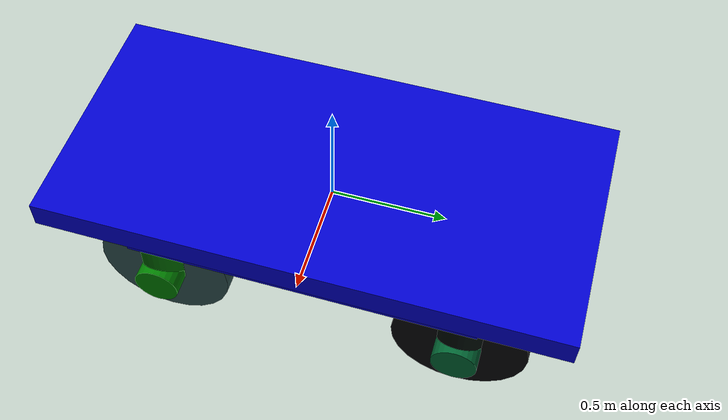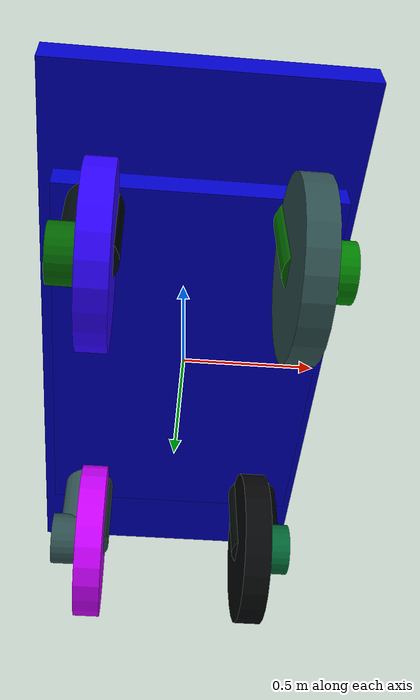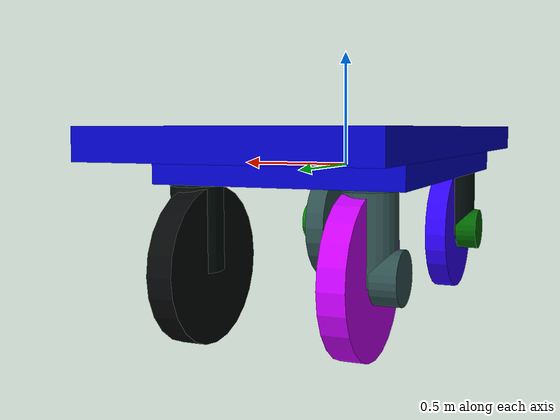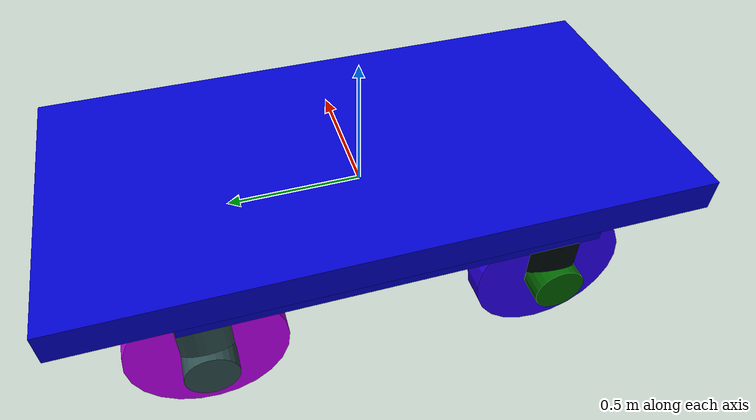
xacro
<?xml version="1.0"?>
<!--
	base
	laser:hokuyo
	IMU
-->
<robot name="roadrobotH_base" xmlns:xacro="http://www.ros.org/wiki/xacro" >
	<xacro:include filename="$(find mygazebo)/gazebo/roadrobotH_base_gazebo.xacro"/>
    <xacro:include filename="$(find mygazebo)/property/roadrobotH_base_property.xacro"/>

    <xacro:macro name="default_inertial" params="mass">
    <inertial>
      <mass value="${mass}" />

              <inertia ixx="0.0001" ixy="0.0" ixz="0.0"
                 iyy="0.0001" iyz="0.0"
                 izz="0.0001" />

    </inertial>
    </xacro:macro>

    <link name="base_link">
        <visual>
            <geometry>
                <box size="${length/1.0} ${width} ${height}"/>
            </geometry>
            <origin rpy="0 0 0" xyz="0 0 0"/>
            <material name="blue">
                <color rgba="0 0 .8 1"/>
            </material>
        </visual>
        <collision>
            <geometry>
                <box size="${length/1.0} ${width} ${height}"/>
            </geometry>
            <origin rpy="0 0 0" xyz="0 0 0"/>
        </collision>
        <xacro:default_inertial mass="${robotBodymas}"/>
    </link>

        <link name="medium_link">
        <visual>
            <geometry>
                <box size="${mediumlength} ${mediumwidth} ${mediumheight}"/>
            </geometry>
            <origin rpy="0 0 0" xyz="0 0 0"/>
            <material name="blue">
                <color rgba="0 0 .8 1"/>
            </material>
        </visual>
        <collision>
            <geometry>
                <box size="${mediumlength} ${mediumwidth} ${mediumheight}"/>
            </geometry>
            <origin rpy="0 0 0" xyz="0 0 0"/>
        </collision>
        <xacro:default_inertial mass="10"/>
    </link>

    <joint name="medium_base_joint" type="fixed">

        <parent link="base_link"/>
        <child link="medium_link"/>
        <origin rpy=" 0  0  0"  xyz="0 0 ${height/2.0 + mediumheight/2.0}"/>
        <joint_properties damping="1" friction="1"/>
    </joint>

<!-- right_front_leg -->
 <link name="right_front_leg">
        <visual>
            <geometry>
                <cylinder length="${legLen}" radius="${legdiam}"/>
            </geometry>
            <material name="black">
                <color rgba="0 10 5 1"/>
            </material>
        </visual>
        <collision>
            <geometry>
                <cylinder length="${legLen}" radius="${legdiam}"/>
            </geometry>
            <origin  rpy="0 0 0" xyz="0 0 0"/>
        </collision>
        <xacro:default_inertial mass="30"/>
    </link>
    <joint name="right_front_leg_base_joint" type="revolute">
        <axis xyz="0 0 1"/>
        <parent link="base_link"/>
        <child link="right_front_leg"/>
        <origin rpy=" 0  0  ${pi/2}"  xyz="  ${length/2-0.15} ${width/2-legdiam/2-0.025} ${-legLen/2-height/2-jointgap}"/>
        <limit effort="100" velocity="100" lower="${-2*pi}" upper="${2*pi}"/>
        <joint_properties damping="0.01" friction="0.01"/>
    </joint>

    <link name="right_front_leg_medium">
        <visual>
            <geometry>
                <cylinder length="${legmediumlen}" radius="${legmediumdiam}"/>
            </geometry>
            <material name="black">
                <color rgba="0 100 50 1"/>
            </material>
        </visual>
        <collision>
            <geometry>
                <cylinder length="${legmediumlen}" radius="${legmediumdiam}"/>
            </geometry>
            <origin  rpy="0 0 0" xyz="0 0 0"/>
        </collision>
        <xacro:default_inertial mass="20"/>
    </link>

    <joint name="right_front_medium_leg_joint" type="fixed">
        <axis xyz="0 0 1"/>
        <parent link="right_front_leg"/>
        <child link="right_front_leg_medium"/>
        <origin rpy=" ${-pi/2.0}  0  0"  xyz="0 ${-(legdiam/2+legmediumlen/4)} ${-legLen/2.0+legmediumdiam/4}"/>
        <joint_properties damping="0.01" friction="0.01"/>
    </joint>

    <link name="right_front_wheel">
        <visual>
            <geometry>
                <cylinder length="${wheelLen}" radius="${wheeldiam}"/>
            </geometry>
            <material name="black">
                <color rgba="5 6 7 1"/>
            </material>
        </visual>
        <collision>
            <geometry>
                <cylinder length="${wheelLen}" radius="${wheeldiam}"/>
            </geometry>
        </collision>
        <xacro:default_inertial mass="${wheelmas}"/>
    </link>

    <joint name="right_front_wheel_joint" type="continuous">
        <axis xyz="0 0 1"/>
        <parent link="right_front_leg_medium"/>
        <child link="right_front_wheel"/>
        <origin rpy="0  0 ${-pi/2.0}"  xyz="0  0 ${(legmediumlen/2+wheelLen/2+jointgap)}"/>
        <limit effort="${wheelJoinLimit_T}" velocity="${wheelJoinLimit_v}"/>
        <joint_properties damping="0.0" friction="0.0"/>
    </joint>

    <!-- test///////////////////////////////////// -->
    <!-- test///////////////////////////////////// -->

<!-- right_back_leg -->
 <link name="right_back_leg">
        <visual>
            <geometry>
                <cylinder length="${legLen}" radius="${legdiam}"/>
            </geometry>
            <material name="black">
                <color rgba="0 100 0 1"/>
            </material>
        </visual>
        <collision>
            <geometry>
                <cylinder length="${legLen}" radius="${legdiam}"/>
            </geometry>
            <origin  rpy="0 0 0" xyz="0 0 0"/>
        </collision>
        <xacro:default_inertial mass="30"/>
    </link>

    <joint name="right_back_leg_base_joint" type="revolute">
        <axis xyz="0 0 1"/>
        <parent link="base_link"/>
        <child link="right_back_leg"/>
        <origin rpy=" 0  0  ${pi/2}"  xyz="  ${length/2-0.15} ${-(width/2-legdiam/2-0.025)} ${-legLen/2-height/2-jointgap}"/>
        <limit effort="100" velocity="100" lower="${-2*pi}" upper="${2*pi}"/>
        <joint_properties damping="0.01" friction="0.01"/>
    </joint>

     <link name="right_back_leg_medium">
        <visual>
            <geometry>
                <cylinder length="${legmediumlen}" radius="${legmediumdiam}"/>
            </geometry>
            <material name="black">
                <color rgba="0 0.5 0 1"/>
            </material>
        </visual>
        <collision>
            <geometry>
                <cylinder length="${legmediumlen}" radius="${legmediumdiam}"/>
            </geometry>
            <origin  rpy="0 0 0" xyz="0 0 0"/>
        </collision>
        <xacro:default_inertial mass="20"/>
    </link>

    <joint name="right_back_medium_leg_joint" type="fixed">
        <axis xyz="0 0 1"/>
        <parent link="right_back_leg"/>
        <child link="right_back_leg_medium"/>
         <origin rpy=" ${-pi/2.0}  0  0"  xyz="0 ${-(legdiam/2+legmediumlen/4)} ${-legLen/2.0+legmediumdiam/4}"/>
        <joint_properties damping="0.01" friction="0.01"/>
    </joint>

    <link name="right_back_wheel">
        <visual>
            <geometry>
                <cylinder length="${wheelLen}" radius="${wheeldiam}"/>
            </geometry>
            <material name="black">
                <color rgba="0.18 0.31 0.31 1"/>
            </material>
        </visual>
        <collision>
            <geometry>
                <cylinder length="${wheelLen}" radius="${wheeldiam}"/>
            </geometry>
        </collision>
        <xacro:default_inertial mass="${wheelmas}"/>
    </link>

    <joint name="right_back_wheel_joint" type="continuous">
        <axis xyz="0 0 1"/>
        <parent link="right_back_leg_medium"/>
        <child link="right_back_wheel"/>
        <origin rpy="0  0 ${-pi/2.0}"  xyz="0  0 ${(legmediumlen/2+wheelLen/2+jointgap)}"/>
        <limit effort="${wheelJoinLimit_T}" velocity="${wheelJoinLimit_v}"/>
        <joint_properties damping="0.0" friction="0.0"/>
    </joint> -->
    <!-- test///////////////////////////////////// -->
    <!-- test///////////////////////////////////// -->
<!-- left_front_leg -->
     <link name="left_front_leg">
        <visual>
            <geometry>
                <cylinder length="${legLen}" radius="${legdiam}"/>
            </geometry>
            <material name="black">
                <color rgba="47 79 79 1"/>
            </material>
        </visual>
        <collision>
            <geometry>
                <cylinder length="${legLen}" radius="${legdiam}"/>
            </geometry>
            <origin  rpy="0 0 0" xyz="0 0 0"/>
        </collision>
        <xacro:default_inertial mass="30"/>
    </link>

    <joint name="left_front_leg_base_joint" type="revolute">
        <axis xyz="0 0 1"/>
        <parent link="base_link"/>
        <child link="left_front_leg"/>
        <origin rpy=" 0  0  ${pi/2.0}"  xyz="${-(length/2-0.15)} ${(width/2-legdiam/2-0.025)}   ${-legLen/2-height/2-jointgap}"/>
        <limit effort="100" velocity="100" lower="${-2*pi}" upper="${2*pi}"/>
        <joint_properties damping="0.01" friction="0.01"/>
    </joint>

    <link name="left_front_leg_medium">
        <visual>
            <geometry>
                <cylinder length="${legmediumlen}" radius="${legmediumdiam}"/>
            </geometry>
            <material name="black">
                <color rgba="47 79 79 1"/>
            </material>
        </visual>
        <collision>
            <geometry>
                <cylinder length="${legmediumlen}" radius="${legmediumdiam}"/>
            </geometry>
            <origin  rpy="0 0 0" xyz="0 0 0"/>
        </collision>
        <xacro:default_inertial mass="20"/>
    </link>

    <joint name="left_front_medium_leg_joint" type="fixed">
        <axis xyz="0 0 1"/>
        <parent link="left_front_leg"/>
        <child link="left_front_leg_medium"/>
        <origin rpy=" ${-pi/2.0}  0  0"  xyz="0 ${(legdiam/2+legmediumlen/4)} ${-legLen/2.0+legmediumdiam/4}"/>
        <joint_properties damping="0.1" friction="0.1"/>
    </joint>

    <link name="left_front_wheel">
        <visual>
            <geometry>
                <cylinder length="${wheelLen}" radius="${wheeldiam}"/>
            </geometry>
            <material name="black">
                <color rgba=".8 0 1 1"/>
            </material>
        </visual>
        <collision>
            <geometry>
                <cylinder length="${wheelLen}" radius="${wheeldiam}"/>
            </geometry>
        </collision>
        <xacro:default_inertial mass="${wheelmas}"/>
    </link>

    <joint name="left_front_wheel_joint" type="continuous">
        <axis xyz="0 0 1"/>
        <parent link="left_front_leg_medium"/>
        <child link="left_front_wheel"/>
        <origin rpy="0  0 ${-pi/2.0}"  xyz="0  0 ${-(legmediumlen/2+wheelLen/2+jointgap)}"/>
        <limit effort="${wheelJoinLimit_T}" velocity="${wheelJoinLimit_v}"/>
        <joint_properties damping="0.0" friction="0.0"/>
    </joint>
    <!-- test///////////////////////////////////// -->
    <!-- test///////////////////////////////////// -->
<!-- left_back_leg -->
     <link name="left_back_leg">
        <visual>
            <geometry>
                <cylinder length="${legLen}" radius="${legdiam}"/>
            </geometry>
            <material name="black">
                <color rgba="0 10 10 1"/>
            </material>
        </visual>
        <collision>
            <geometry>
                <cylinder length="${legLen}" radius="${legdiam}"/>
            </geometry>
            <origin  rpy="0 0 0" xyz="0 0 0"/>
        </collision>
        <xacro:default_inertial mass="30"/>
    </link>

    <joint name="left_back_leg_base_joint" type="revolute">
        <axis xyz="0 0 1"/>
        <parent link="base_link"/>
        <child link="left_back_leg"/>
        <origin rpy=" 0  0  ${pi/2.0}"  xyz="${-(length/2-0.15)} ${-(width/2-legdiam/2-0.025)}   ${-legLen/2-height/2-jointgap}"/>
        <limit effort="100" velocity="100" lower="${-2*pi}" upper="${2*pi}"/>

        <joint_properties damping="0.01" friction="0.01"/>
    </joint>

    <link name="left_back_leg_medium">
        <visual>
            <geometry>
                <cylinder length="${legmediumlen}" radius="${legmediumdiam}"/>
            </geometry>
            <material name="black">
                <color rgba="0 100 0 1"/>
            </material>
        </visual>
        <collision>
            <geometry>
                <cylinder length="${legmediumlen}" radius="${legmediumdiam}"/>
            </geometry>
            <origin  rpy="0 0 0" xyz="0 0 0"/>
        </collision>
        <xacro:default_inertial mass="20"/>
    </link>

    <joint name="left_back_medium_leg_joint" type="fixed">
        <axis xyz="0 0 1"/>
        <parent link="left_back_leg"/>
        <child link="left_back_leg_medium"/>
        <origin rpy=" ${-pi/2.0}  0  0"  xyz="0 ${(legdiam/2+legmediumlen/4)} ${-legLen/2.0+legmediumdiam/4}"/>
        <joint_properties damping="0.01" friction="0.01"/>
    </joint>

    <link name="left_back_wheel">
        <visual>
            <geometry>
                <cylinder length="${wheelLen}" radius="${wheeldiam}"/>
            </geometry>
            <material name="black">
                <color rgba="0.18 0 1 1"/>
            </material>
        </visual>
        <collision>
            <geometry>
                <cylinder length="${wheelLen}" radius="${wheeldiam}"/>
            </geometry>
        </collision>
        <xacro:default_inertial mass="${wheelmas}"/>
    </link>

    <joint name="left_back_wheel_joint" type="continuous">
        <axis xyz="0 0 1"/>
        <parent link="left_back_leg_medium"/>
        <child link="left_back_wheel"/>
        <origin rpy="0  0 ${-pi/2.0}"  xyz="0  0 ${-(legmediumlen/2+wheelLen/2+jointgap)}"/>
        <limit effort="${wheelJoinLimit_T}" velocity="${wheelJoinLimit_v}"/>
        <joint_properties damping="0.0" friction="0.0"/>
    </joint>
    <!-- test///////////////////////////////////// -->
    <!-- test///////////////////////////////////// -->

  <roadrobotH_base_sim/>

  <roadrobotH_base_property/>
</robot>

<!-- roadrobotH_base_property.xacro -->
<robot name="roadrobotH_base_property" xmlns:xacro="http://www.ros.org/wiki/xacro" >

    <xacro:property name="length" value="1.0" />
    <xacro:property name="width" value="1.5" />
    <xacro:property name="height" value="0.1" />
    <xacro:property name="mediumlength" value="${length*1.1}" />
    <xacro:property name="mediumwidth" value="${width*1.5}" />
    <xacro:property name="mediumheight" value="${height*1.2}" />
    <xacro:property name="legLen" value="${wheeldiam+legmediumdiam/4}" />
    <xacro:property name="legdiam" value="0.1" />
    <xacro:property name="legmediumlen" value="0.1" />
    <xacro:property name="legmediumdiam" value="0.1" />
    <xacro:property name="wheelLen" value="0.1" />
    <xacro:property name="wheeldiam" value="0.3" />
    <xacro:property name="jointgap" value="0.005" />
    <xacro:property name="wheelJoinLimit_v" value="5000" />
    <xacro:property name="wheelJoinLimit_T" value="1000" />
     <xacro:property name="robotBodymas" value="100" />
      <xacro:property name="wheelmas" value="35" />

    <xacro:property name="clength" value="0.02" />
    <xacro:property name="radius" value="0.05" />
    <xacro:property name="baselen" value="0.4" />
    <xacro:property name="pi" value="3.1415926" />
</robot>
